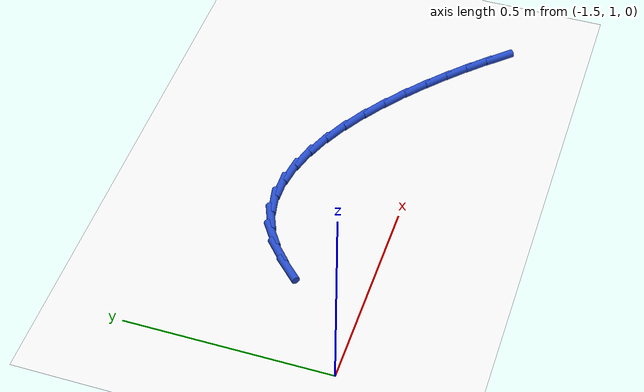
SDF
<sdf version="1.6">
 <world name="default">
  <model name="ground_plane">
   <static>1</static>
   <link name="link">
    <collision name="collision">
     <geometry><plane><normal>0 0 1</normal><size>100 100</size></plane></geometry>
     <surface><friction><ode><mu>100</mu><mu2>50</mu2></ode></friction></surface>
    </collision>
    <visual name="visual">
     <cast_shadows>0</cast_shadows>
     <geometry><plane><normal>0 0 1</normal><size>100 100</size></plane></geometry>
     <material>
      <script><uri>file://media/materials/scripts/gazebo.material</uri><name>Gazebo/WhiteGlow</name></script>
     </material>
    </visual>
   </link>
  </model>
  <model name="line">
   <link name="link_18">
    <pose>-0.39123897245079114 0.9053524637796784 0.01 0 1.57 -0.8152413379001949</pose>
    <collision name="collision">
     <geometry><cylinder><radius>0.01</radius><length>0.08</length></cylinder></geometry>
    </collision>
    <visual name="visual">
     <material>
      <script><name>Gazebo/Blue</name><uri>file://media/materials/scripts/gazebo.material</uri></script>
     </material>
     <geometry><cylinder><radius>0.01</radius><length>0.08</length></cylinder></geometry>
    </visual>
   </link>
   <link name="link_19">
    <pose>-0.4319163278505107 0.9485331526406895 0.01 0 1.57 -0.7800587912551206</pose>
    <collision name="collision">
     <geometry><cylinder><radius>0.01</radius><length>0.08</length></cylinder></geometry>
    </collision>
    <visual name="visual">
     <material>
      <script><name>Gazebo/Blue</name><uri>file://media/materials/scripts/gazebo.material</uri></script>
     </material>
     <geometry><cylinder><radius>0.01</radius><length>0.08</length></cylinder></geometry>
    </visual>
   </link>
   <link name="link_20">
    <pose>-0.47518400657852156 0.9913412364724367 0.01 0 1.57 -0.7461815445896894</pose>
    <collision name="collision">
     <geometry><cylinder><radius>0.01</radius><length>0.08</length></cylinder></geometry>
    </collision>
    <visual name="visual">
     <material>
      <script><name>Gazebo/Blue</name><uri>file://media/materials/scripts/gazebo.material</uri></script>
     </material>
     <geometry><cylinder><radius>0.01</radius><length>0.08</length></cylinder></geometry>
    </visual>
   </link>
   <link name="link_21">
    <pose>-0.5211623421408822 1.0338477167215838 0.01 0 1.57 -0.7127710313288037</pose>
    <collision name="collision">
     <geometry><cylinder><radius>0.01</radius><length>0.08</length></cylinder></geometry>
    </collision>
    <visual name="visual">
     <material>
      <script><name>Gazebo/Blue</name><uri>file://media/materials/scripts/gazebo.material</uri></script>
     </material>
     <geometry><cylinder><radius>0.01</radius><length>0.08</length></cylinder></geometry>
    </visual>
   </link>
   <link name="link_22">
    <pose>-0.5698612925751441 1.0759410646355243 0.01 0 1.57 -0.6758368118899816</pose>
    <collision name="collision">
     <geometry><cylinder><radius>0.01</radius><length>0.08</length></cylinder></geometry>
    </collision>
    <visual name="visual">
     <material>
      <script><name>Gazebo/Blue</name><uri>file://media/materials/scripts/gazebo.material</uri></script>
     </material>
     <geometry><cylinder><radius>0.01</radius><length>0.08</length></cylinder></geometry>
    </visual>
   </link>
   <link name="link_23">
    <pose>-0.6209004555892221 1.1168642044961887 0.01 0 1.57 -0.6333698497305258</pose>
    <collision name="collision">
     <geometry><cylinder><radius>0.01</radius><length>0.08</length></cylinder></geometry>
    </collision>
    <visual name="visual">
     <material>
      <script><name>Gazebo/Blue</name><uri>file://media/materials/scripts/gazebo.material</uri></script>
     </material>
     <geometry><cylinder><radius>0.01</radius><length>0.08</length></cylinder></geometry>
    </visual>
   </link>
   <link name="link_24">
    <pose>-0.67381317327816 1.1557174178912688 0.01 0 1.57 -0.5837912353796403</pose>
    <collision name="collision">
     <geometry><cylinder><radius>0.01</radius><length>0.08</length></cylinder></geometry>
    </collision>
    <visual name="visual">
     <material>
      <script><name>Gazebo/Blue</name><uri>file://media/materials/scripts/gazebo.material</uri></script>
     </material>
     <geometry><cylinder><radius>0.01</radius><length>0.08</length></cylinder></geometry>
    </visual>
   </link>
   <link name="link_25">
    <pose>-0.7281327877370014 1.1916009864084562 0.01 0 1.57 -0.5250892704416449</pose>
    <collision name="collision">
     <geometry><cylinder><radius>0.01</radius><length>0.08</length></cylinder></geometry>
    </collision>
    <visual name="visual">
     <material>
      <script><name>Gazebo/Blue</name><uri>file://media/materials/scripts/gazebo.material</uri></script>
     </material>
     <geometry><cylinder><radius>0.01</radius><length>0.08</length></cylinder></geometry>
    </visual>
   </link>
   <link name="link_26">
    <pose>-0.7833926410607888 1.2236151916354423 0.01 0 1.57 -0.4546854858867576</pose>
    <collision name="collision">
     <geometry><cylinder><radius>0.01</radius><length>0.08</length></cylinder></geometry>
    </collision>
    <visual name="visual">
     <material>
      <script><name>Gazebo/Blue</name><uri>file://media/materials/scripts/gazebo.material</uri></script>
     </material>
     <geometry><cylinder><radius>0.01</radius><length>0.08</length></cylinder></geometry>
    </visual>
   </link>
   <link name="link_27">
    <pose>-0.8391260753445658 1.2508603151599191 0.01 0 1.57 -0.3693244661340358</pose>
    <collision name="collision">
     <geometry><cylinder><radius>0.01</radius><length>0.08</length></cylinder></geometry>
    </collision>
    <visual name="visual">
     <material>
      <script><name>Gazebo/Blue</name><uri>file://media/materials/scripts/gazebo.material</uri></script>
     </material>
     <geometry><cylinder><radius>0.01</radius><length>0.08</length></cylinder></geometry>
    </visual>
   </link>
   <link name="link_28">
    <pose>-0.8948664326833764 1.2724366385695778 0.01 0 1.57 -0.26509449051942185</pose>
    <collision name="collision">
     <geometry><cylinder><radius>0.01</radius><length>0.08</length></cylinder></geometry>
    </collision>
    <visual name="visual">
     <material>
      <script><name>Gazebo/Blue</name><uri>file://media/materials/scripts/gazebo.material</uri></script>
     </material>
     <geometry><cylinder><radius>0.01</radius><length>0.08</length></cylinder></geometry>
    </visual>
   </link>
   <link name="link_29">
    <pose>-0.9501470551722635 1.2874444434521104 0.01 0 1.57 -0.1378321899209526</pose>
    <collision name="collision">
     <geometry><cylinder><radius>0.01</radius><length>0.08</length></cylinder></geometry>
    </collision>
    <visual name="visual">
     <material>
      <script><name>Gazebo/Blue</name><uri>file://media/materials/scripts/gazebo.material</uri></script>
     </material>
     <geometry><cylinder><radius>0.01</radius><length>0.08</length></cylinder></geometry>
    </visual>
   </link>
   <link name="link_30">
    <pose>-1.00450128490627 1.2949840113952076 0.01 0 1.57 0.015640132584683365</pose>
    <collision name="collision">
     <geometry><cylinder><radius>0.01</radius><length>0.08</length></cylinder></geometry>
    </collision>
    <visual name="visual">
     <material>
      <script><name>Gazebo/Blue</name><uri>file://media/materials/scripts/gazebo.material</uri></script>
     </material>
     <geometry><cylinder><radius>0.01</radius><length>0.08</length></cylinder></geometry>
    </visual>
   </link>
   <link name="link_31">
    <pose>-1.05746246398044 1.2941556239865621 0.01 0 1.57 0.1950568718612323</pose>
    <collision name="collision">
     <geometry><cylinder><radius>0.01</radius><length>0.08</length></cylinder></geometry>
    </collision>
    <visual name="visual">
     <material>
      <script><name>Gazebo/Blue</name><uri>file://media/materials/scripts/gazebo.material</uri></script>
     </material>
     <geometry><cylinder><radius>0.01</radius><length>0.08</length></cylinder></geometry>
    </visual>
   </link>
   <link name="link_32">
    <pose>-1.1085639344898164 1.2840595628138647 0.01 0 1.57 0.3937511248027767</pose>
    <collision name="collision">
     <geometry><cylinder><radius>0.01</radius><length>0.08</length></cylinder></geometry>
    </collision>
    <visual name="visual">
     <material>
      <script><name>Gazebo/Blue</name><uri>file://media/materials/scripts/gazebo.material</uri></script>
     </material>
     <geometry><cylinder><radius>0.01</radius><length>0.08</length></cylinder></geometry>
    </visual>
   </link>
   <link name="link_33">
    <pose>-1.1573390385294433 1.2637961094648078 0.01 0 1.57 0.5896157293285393</pose>
    <collision name="collision">
     <geometry><cylinder><radius>0.01</radius><length>0.08</length></cylinder></geometry>
    </collision>
    <visual name="visual">
     <material>
      <script><name>Gazebo/Blue</name><uri>file://media/materials/scripts/gazebo.material</uri></script>
     </material>
     <geometry><cylinder><radius>0.01</radius><length>0.08</length></cylinder></geometry>
    </visual>
   </link>
   <link name="link_34">
    <pose>-1.2034526000015322 1.2329461715284347 0.01 0 1.57 0.7226743091859348</pose>
    <collision name="collision">
     <geometry><cylinder><radius>0.01</radius><length>0.08</length></cylinder></geometry>
    </collision>
    <visual name="visual">
     <material>
      <script><name>Gazebo/Blue</name><uri>file://media/materials/scripts/gazebo.material</uri></script>
     </material>
     <geometry><cylinder><radius>0.01</radius><length>0.08</length></cylinder></geometry>
    </visual>
   </link>
   <link name="link_35">
    <pose>-1.2474145833098154 1.19418003077087 0.01 0 1.57 0.7869786380744113</pose>
    <collision name="collision">
     <geometry><cylinder><radius>0.01</radius><length>0.08</length></cylinder></geometry>
    </collision>
    <visual name="visual">
     <material>
      <script><name>Gazebo/Blue</name><uri>file://media/materials/scripts/gazebo.material</uri></script>
     </material>
     <geometry><cylinder><radius>0.01</radius><length>0.08</length></cylinder></geometry>
    </visual>
   </link>
  </model>
 </world>
</sdf>
